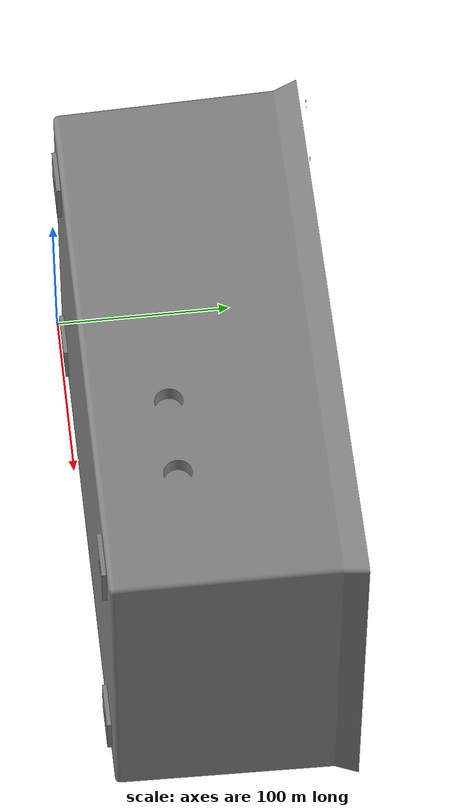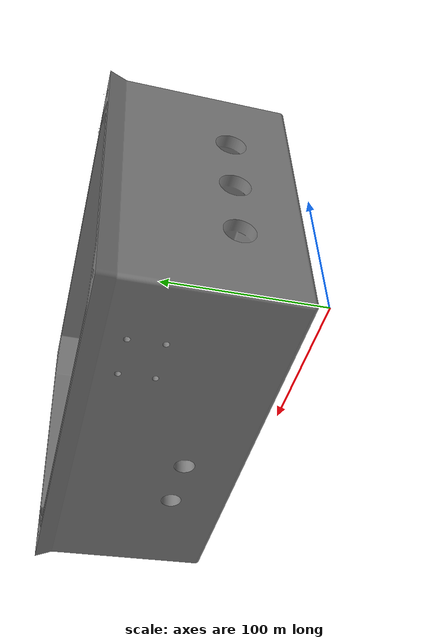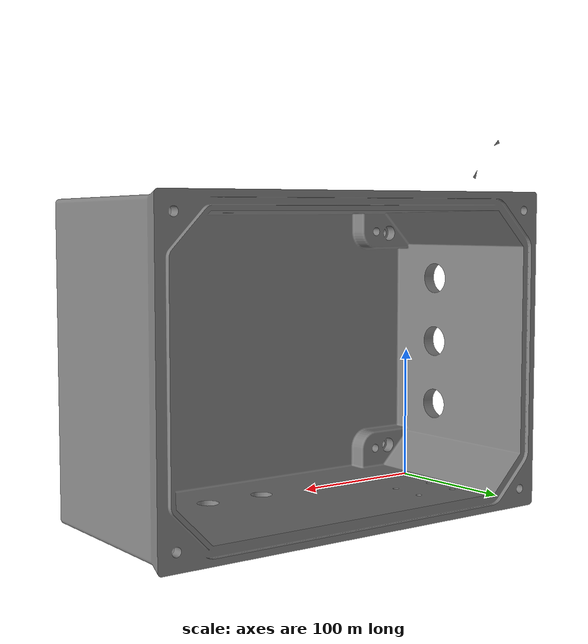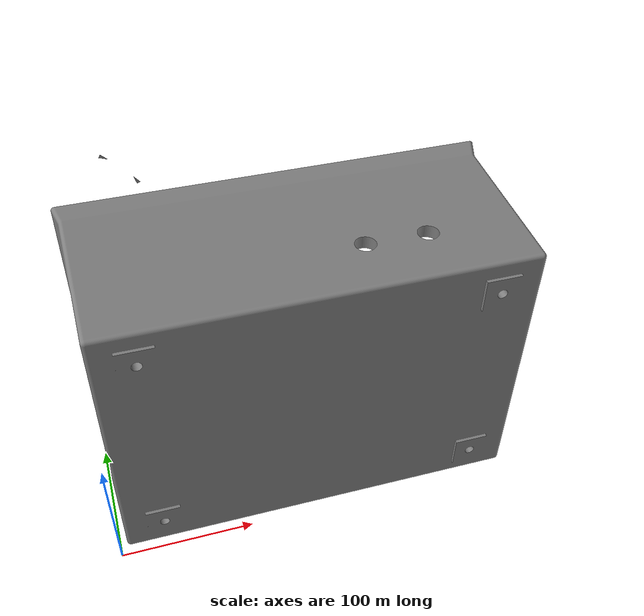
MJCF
<mujoco model="nist_ftc_07_asme1_ap242-e2">
  <default>
    <default class="visual">
      <geom group="2" type="mesh" contype="0" conaffinity="0"/>
    </default>
    <default class="collision">
      <geom group="3" type="mesh"/>
    </default>
  </default>
  <asset>
    <mesh file="nist_ftc_07_asme1_ap242-e2.obj"/>
    <mesh file="nist_ftc_07_asme1_ap242-e2_collision_0.obj"/>
    <mesh file="nist_ftc_07_asme1_ap242-e2_collision_1.obj"/>
    <mesh file="nist_ftc_07_asme1_ap242-e2_collision_2.obj"/>
    <mesh file="nist_ftc_07_asme1_ap242-e2_collision_3.obj"/>
    <mesh file="nist_ftc_07_asme1_ap242-e2_collision_4.obj"/>
    <mesh file="nist_ftc_07_asme1_ap242-e2_collision_5.obj"/>
  </asset>
  <worldbody>
    <body name="nist_ftc_07_asme1_ap242-e2">
      <freejoint/>
      <geom mesh="nist_ftc_07_asme1_ap242-e2" class="visual"/>
      <geom mesh="nist_ftc_07_asme1_ap242-e2_collision_0" rgba="0.8022953159628388 0.5788548745856653 0.00486781526411062 1" class="collision"/>
      <geom mesh="nist_ftc_07_asme1_ap242-e2_collision_1" rgba="0.45483969412945235 0.7497277462028399 0.9648464694378633 1" class="collision"/>
      <geom mesh="nist_ftc_07_asme1_ap242-e2_collision_2" rgba="0.3679406858902664 0.8231852557930645 0.11338281225996671 1" class="collision"/>
      <geom mesh="nist_ftc_07_asme1_ap242-e2_collision_3" rgba="0.36758122274786875 0.9276211382902508 0.5871380091735697 1" class="collision"/>
      <geom mesh="nist_ftc_07_asme1_ap242-e2_collision_4" rgba="0.6408295709879668 0.2912978555494905 0.6426664499997373 1" class="collision"/>
      <geom mesh="nist_ftc_07_asme1_ap242-e2_collision_5" rgba="0.9128553344627213 0.9542051543080448 0.5050604778447276 1" class="collision"/>
    </body>
  </worldbody>
</mujoco>
